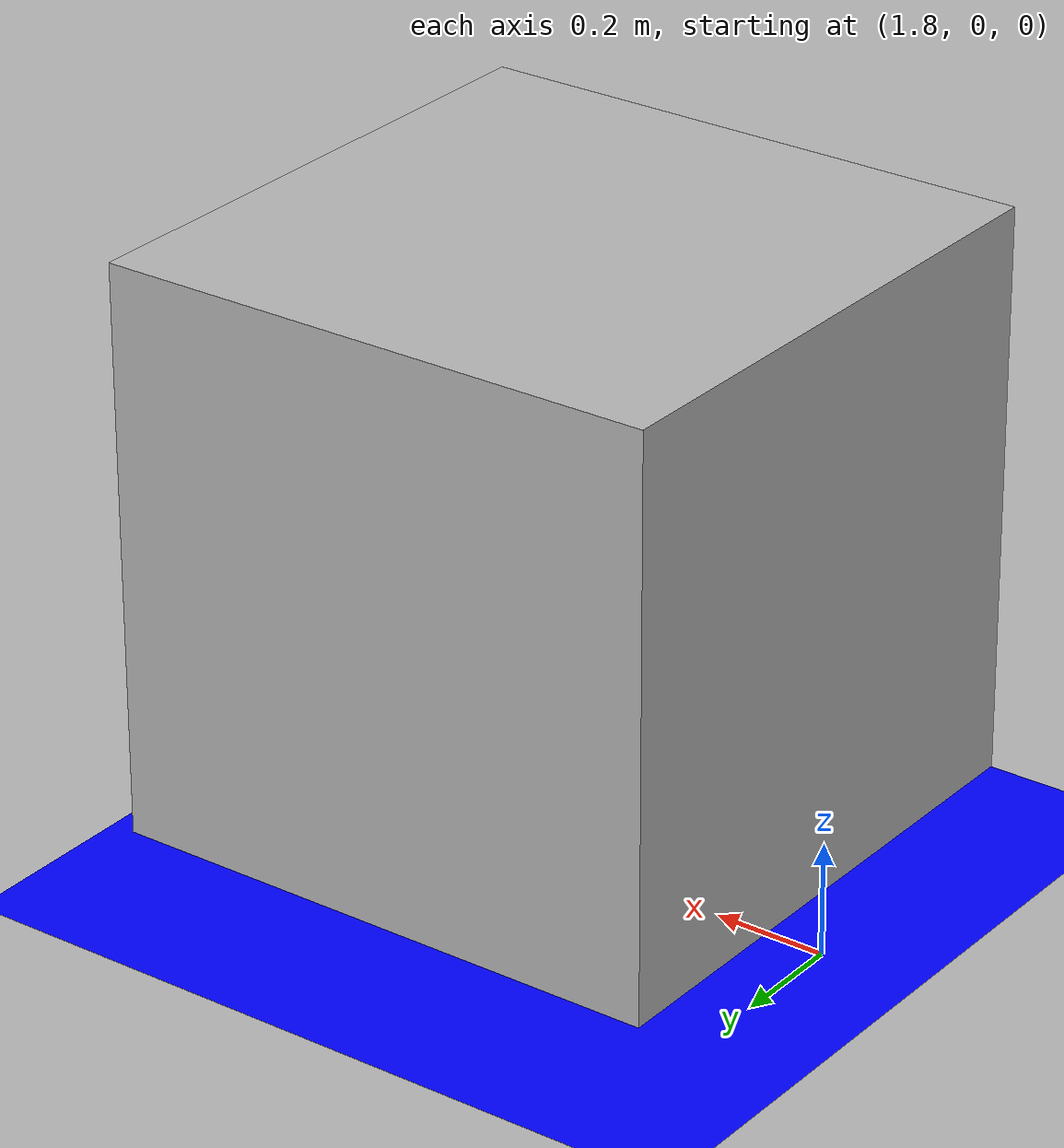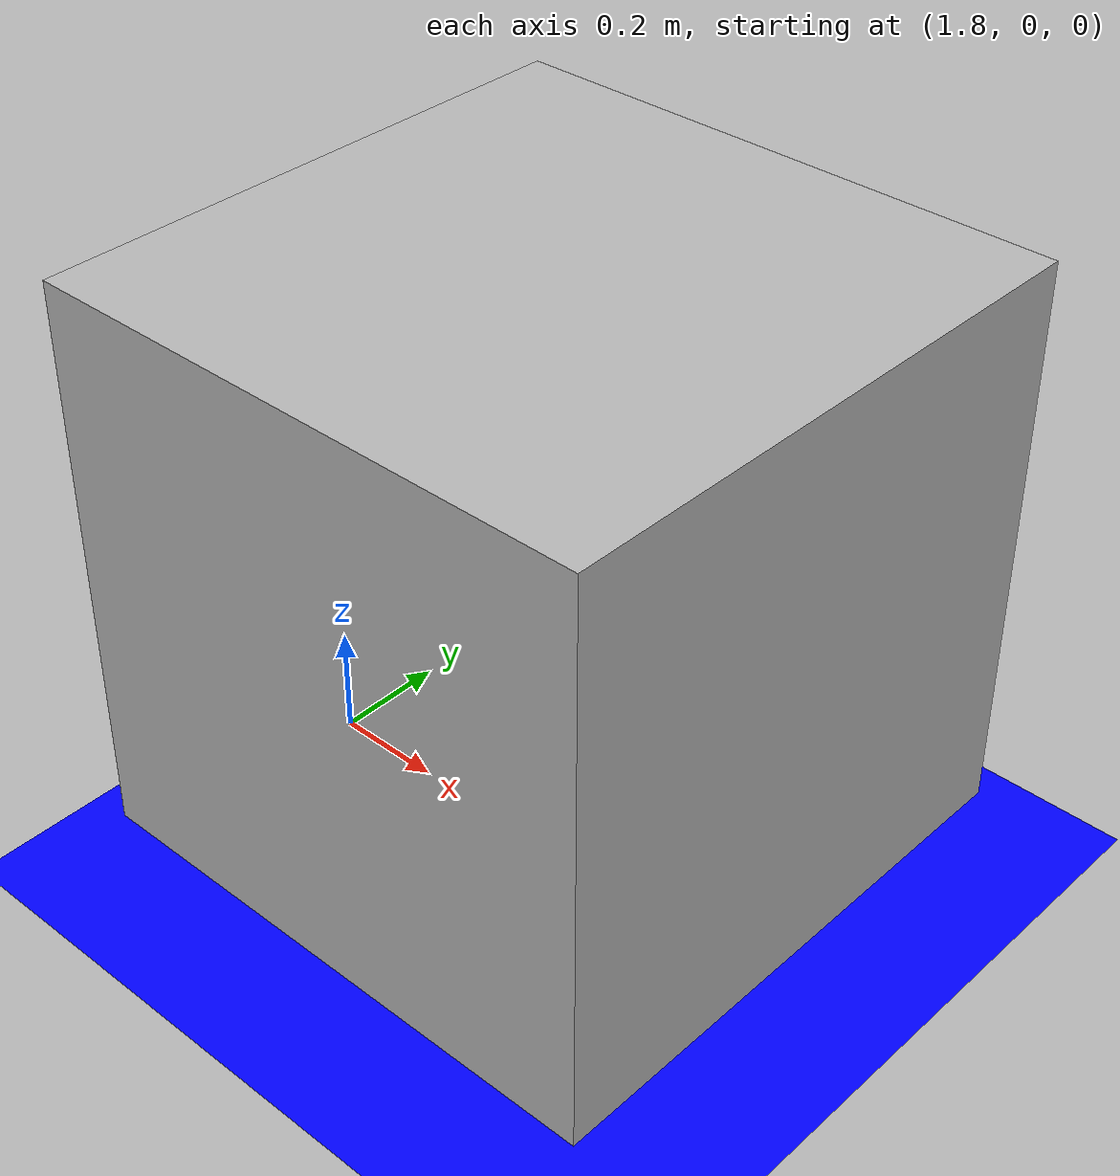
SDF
<sdf version='1.10'>
  <world name='woolletPoolNoGravity_world'>
    <plugin name='gz::sim::systems::Physics' filename='gz-sim-physics-system'/>
    <plugin name='gz::sim::systems::UserCommands' filename='gz-sim-user-commands-system'/>
    <plugin name='gz::sim::systems::SceneBroadcaster' filename='gz-sim-scene-broadcaster-system'/>
    <plugin name='gz::sim::systems::Sensors' filename='gz-sim-sensors-system'>
      <render_engine>ogre2</render_engine>
    </plugin>

    <plugin
      filename="gz-sim-altimeter-system"
      name="gz::sim::systems::Altimeter">
    </plugin>
    <plugin
      filename="gz-sim-imu-system"
      name="gz::sim::systems::Imu">
    </plugin>
    <plugin
      filename="gz-sim-dvl-system"
      name="gz::sim::systems::DopplerVelocityLogSystem">
    </plugin>

    <gravity>0 0 0</gravity>
    <magnetic_field>5.5645e-06 2.28758e-05 -4.23884e-05</magnetic_field>
    <atmosphere type='adiabatic'/>

    <physics type='ode'>
      <max_step_size>0.001</max_step_size>
      <real_time_factor>1</real_time_factor>
      <real_time_update_rate>1000</real_time_update_rate>
    </physics>

    <scene>
      <ambient>0.4 0.4 0.4 1</ambient>
      <background>0.7 0.7 0.7 1</background>
      <shadows>true</shadows>
    </scene>

    <!-- Water plane -->
    <model name='water_plane'>
      <static>true</static>
      <link name='link'>
        <visual name='water_plane'>
          <geometry>
            <plane>
              <size>100 100</size>
              <normal>0 0 1</normal>
            </plane>
          </geometry>
          <material>
            <ambient>0 0 1 0.5</ambient>
            <diffuse>0 0 1 0.5</diffuse>
            <specular>0 0 1 0.5</specular>
          </material>
        </visual>
        <pose>0 0 0 0 0 0</pose>
      </link>
      <pose>0 0 0 0 0 0</pose>
      <self_collide>false</self_collide>
    </model>

    <!-- Floating cube -->
    <model name='floater_cube'>
      <pose>2.3005 0 0.6148 0 0 0</pose>
      <link name='cube_link'>
        <inertial>
          <mass>10</mass>
          <inertia>
            <ixx>0.166</ixx>
            <iyy>0.166</iyy>
            <izz>0.166</izz>
          </inertia>
        </inertial>
        <collision name='col'>
          <geometry>
            <box>
              <size>1 1 1</size>
            </box>
          </geometry>
        </collision>
        <visual name='vis'>
          <geometry>
            <box>
              <size>1 1 1</size>
            </box>
          </geometry>
        </visual>
      </link>
      <plugin name='gz::sim::systems::SimpleBuoyancy' filename='libsimple_buoyancy.so'>
        <link_name>cube_link</link_name>
        <water_level>0.0</water_level>
        <fluid_density>1000.0</fluid_density>
        <volume>1.0</volume>
      </plugin>
      <static>false</static>
      <self_collide>false</self_collide>
    </model>

    <!-- Observer camera -->
    <model name='observer_camera'>
      <static>true</static>
      <pose>-4 0 2 0 0 0</pose>
      <link name='camera_link'>
        <sensor name='observer_camera_sensor' type='camera'>
          <pose>0 0 0 0 0 0</pose>
          <topic>/observer/image_raw</topic>
          <update_rate>30</update_rate>
          <camera name='__default__'>
            <horizontal_fov>1.047</horizontal_fov>
            <image>
              <width>640</width>
              <height>480</height>
              <format>RGB_INT8</format>
            </image>
            <clip>
              <near>0.1</near>
              <far>100</far>
            </clip>
          </camera>
        </sensor>
      </link>
      <self_collide>false</self_collide>
    </model>

    <!-- Woollett Pool model -->
    <model name='WoollettPool'>
      <link name='link'>
        <visual name='visual'>
          <geometry>
            <mesh>
              <uri>model://woollett_pool_2024/WoollettPool.dae</uri>
            </mesh>
          </geometry>
        </visual>
        <collision name='collision'>
          <geometry>
            <mesh>
              <uri>model://woollett_pool_2024/WoollettPool.dae</uri>
            </mesh>
          </geometry>
        </collision>
        <pose>0 0 0 0 0 0</pose>
      </link>
      <pose>0 0 0 0 0 1.57</pose>
      <static>true</static>
      <self_collide>false</self_collide>
    </model>

  </world>
</sdf>
